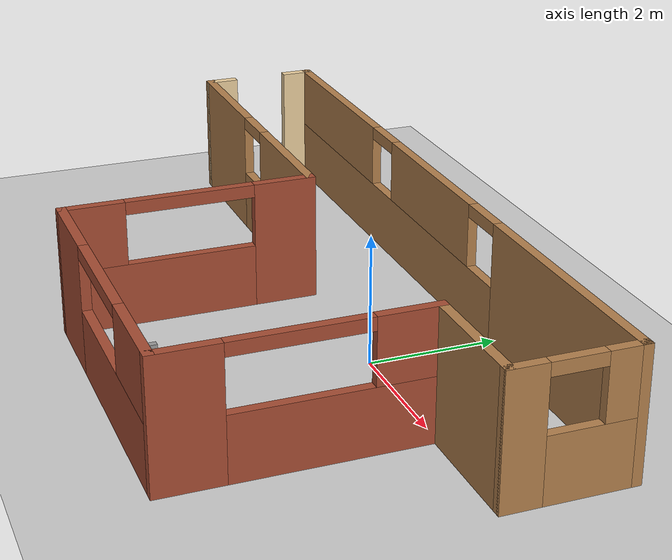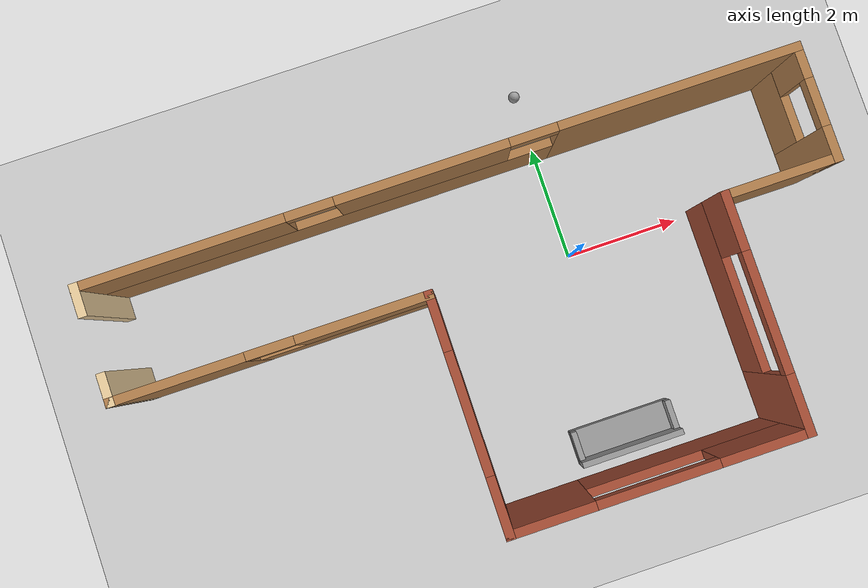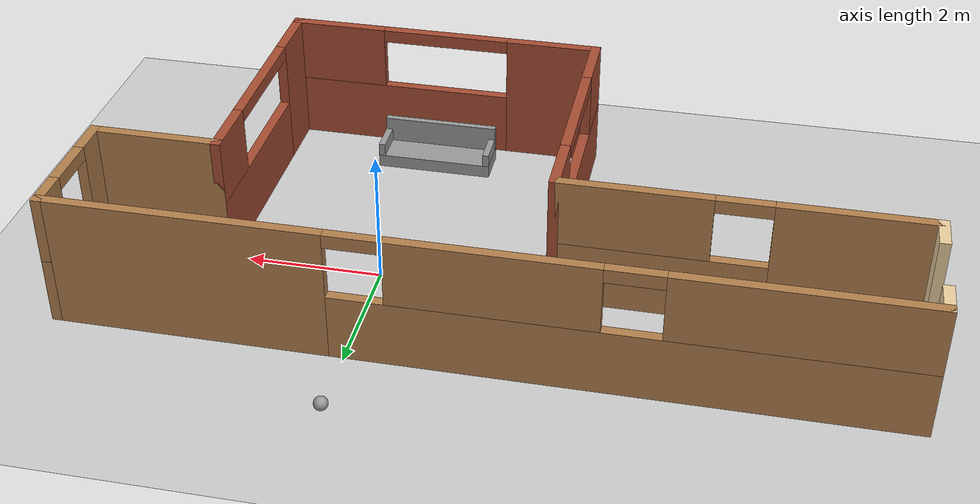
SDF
<sdf version="1.6">
 <world name="default">
  <light name="sun" type="directional">
   <pose>0 0 10 0 -0 0</pose>
   <diffuse>0.8 0.8 0.8 1</diffuse>
   <specular>0.2 0.2 0.2 1</specular>
   <attenuation>
    <range>1000</range>
    <constant>0.9</constant>
    <linear>0.01</linear>
    <quadratic>0.001</quadratic>
   </attenuation>
   <direction>-0.5 0.1 -0.9</direction>
  </light>
  <model name="ground_plane">
   <static>1</static>
   <link name="link">
    <collision name="collision">
     <geometry><plane><normal>0 0 1</normal><size>100 100</size></plane></geometry>
     <surface>
      <contact><collide_bitmask>65535</collide_bitmask></contact>
      <friction><ode><mu>100</mu><mu2>50</mu2></ode></friction>
     </surface>
    </collision>
    <visual name="visual">
     <cast_shadows>0</cast_shadows>
     <geometry><plane><normal>0 0 1</normal><size>100 100</size></plane></geometry>
     <material>
      <script><uri>file://media/materials/scripts/gazebo.material</uri><name>Gazebo/Grey</name></script>
     </material>
    </visual>
   </link>
  </model>
  <gravity>0 0 -9.8</gravity>
  <magnetic_field>6e-06 2.3e-05 -4.2e-05</magnetic_field>
  <atmosphere type="adiabatic"/>
  <physics name="default_physics" default="0" type="ode">
   <max_step_size>0.001</max_step_size>
   <real_time_factor>1</real_time_factor>
   <real_time_update_rate>1000</real_time_update_rate>
  </physics>
  <scene><ambient>0.4 0.4 0.4 1</ambient><background>0.7 0.7 0.7 1</background><shadows>1</shadows></scene>
  <spherical_coordinates>
   <surface_model>EARTH_WGS84</surface_model>
   <latitude_deg>0</latitude_deg>
   <longitude_deg>0</longitude_deg>
   <elevation>0</elevation>
   <heading_deg>0</heading_deg>
  </spherical_coordinates>
  <model name="home">
   <pose>-1.755 -0.984 0 0 -0 0</pose>
   <link name="Wall_10">
    <pose>-5.925 1.925 0 0 -0 -1.5708</pose>
    <visual name="Wall_10_Visual_0">
     <pose>-0.7245 0 1 0 -0 0</pose>
     <geometry><box><size>0.551 0.15 2</size></box></geometry>
     <material>
      <script><uri>file://media/materials/scripts/gazebo.material</uri><name>Gazebo/Grey</name></script>
      <ambient>0.921569 0.807843 0.615686 1</ambient>
     </material>
     <meta><layer>0</layer></meta>
    </visual>
    <collision name="Wall_10_Collision_0">
     <geometry><box><size>0.551 0.15 2</size></box></geometry>
     <pose>-0.7245 0 1 0 -0 0</pose>
    </collision>
    <visual name="Wall_10_Visual_1">
     <pose>0.7255 0 1 0 -0 0</pose>
     <geometry><box><size>0.549 0.15 2</size></box></geometry>
     <material>
      <script><uri>file://media/materials/scripts/gazebo.material</uri><name>Gazebo/Grey</name></script>
      <ambient>0.921569 0.807843 0.615686 1</ambient>
     </material>
     <meta><layer>0</layer></meta>
    </visual>
    <collision name="Wall_10_Collision_1">
     <geometry><box><size>0.549 0.15 2</size></box></geometry>
     <pose>0.7255 0 1 0 -0 0</pose>
    </collision>
   </link>
   <link name="Wall_11">
    <pose>-3.35 1 0 0 -0 0</pose>
    <visual name="Wall_11_Visual_0">
     <pose>-1.5275 0 1 0 -0 0</pose>
     <geometry><box><size>2.245 0.15 2</size></box></geometry>
     <material>
      <script><uri>file://media/materials/scripts/gazebo.material</uri><name>Gazebo/Wood</name></script>
      <ambient>1 1 1 1</ambient>
     </material>
     <meta><layer>0</layer></meta>
    </visual>
    <collision name="Wall_11_Collision_0">
     <geometry><box><size>2.245 0.15 2</size></box></geometry>
     <pose>-1.5275 0 1 0 -0 0</pose>
    </collision>
    <visual name="Wall_11_Visual_1">
     <pose>1.1225 0 0.5 0 -0 0</pose>
     <geometry><box><size>3.055 0.15 1</size></box></geometry>
     <material>
      <script><uri>file://media/materials/scripts/gazebo.material</uri><name>Gazebo/Wood</name></script>
      <ambient>1 1 1 1</ambient>
     </material>
     <meta><layer>0</layer></meta>
    </visual>
    <collision name="Wall_11_Collision_1">
     <geometry><box><size>3.055 0.15 1</size></box></geometry>
     <pose>1.1225 0 0.5 0 -0 0</pose>
    </collision>
    <visual name="Wall_11_Visual_2">
     <pose>1.5225 0 1.5 0 -0 0</pose>
     <geometry><box><size>2.255 0.15 1</size></box></geometry>
     <material>
      <script><uri>file://media/materials/scripts/gazebo.material</uri><name>Gazebo/Wood</name></script>
      <ambient>1 1 1 1</ambient>
     </material>
     <meta><layer>0</layer></meta>
    </visual>
    <collision name="Wall_11_Collision_2">
     <geometry><box><size>2.255 0.15 1</size></box></geometry>
     <pose>1.5225 0 1.5 0 -0 0</pose>
    </collision>
    <visual name="Wall_11_Visual_3">
     <pose>-0.005 0 1.9 0 -0 0</pose>
     <geometry><box><size>0.8 0.15 0.2</size></box></geometry>
     <material>
      <script><uri>file://media/materials/scripts/gazebo.material</uri><name>Gazebo/Wood</name></script>
      <ambient>1 1 1 1</ambient>
     </material>
     <meta><layer>0</layer></meta>
    </visual>
    <collision name="Wall_11_Collision_3">
     <geometry><box><size>0.8 0.15 0.2</size></box></geometry>
     <pose>-0.005 0 1.9 0 -0 0</pose>
    </collision>
   </link>
   <link name="Wall_4">
    <pose>-0.775 -0.925 0 0 -0 -1.5708</pose>
    <visual name="Wall_4_Visual_0">
     <pose>-1.5045 0 1 0 -0 0</pose>
     <geometry><box><size>0.991 0.15 2</size></box></geometry>
     <material>
      <script><uri>file://media/materials/scripts/gazebo.material</uri><name>Gazebo/Bricks</name></script>
      <ambient>1 1 1 1</ambient>
     </material>
     <meta><layer>0</layer></meta>
    </visual>
    <collision name="Wall_4_Collision_0">
     <geometry><box><size>0.991 0.15 2</size></box></geometry>
     <pose>-1.5045 0 1 0 -0 0</pose>
    </collision>
    <visual name="Wall_4_Visual_1">
     <pose>0.4955 0 0.5 0 -0 0</pose>
     <geometry><box><size>3.009 0.15 1</size></box></geometry>
     <material>
      <script><uri>file://media/materials/scripts/gazebo.material</uri><name>Gazebo/Bricks</name></script>
      <ambient>1 1 1 1</ambient>
     </material>
     <meta><layer>0</layer></meta>
    </visual>
    <collision name="Wall_4_Collision_1">
     <geometry><box><size>3.009 0.15 1</size></box></geometry>
     <pose>0.4955 0 0.5 0 -0 0</pose>
    </collision>
    <visual name="Wall_4_Visual_2">
     <pose>1.4955 0 1.5 0 -0 0</pose>
     <geometry><box><size>1.009 0.15 1</size></box></geometry>
     <material>
      <script><uri>file://media/materials/scripts/gazebo.material</uri><name>Gazebo/Bricks</name></script>
      <ambient>1 1 1 1</ambient>
     </material>
     <meta><layer>0</layer></meta>
    </visual>
    <collision name="Wall_4_Collision_2">
     <geometry><box><size>1.009 0.15 1</size></box></geometry>
     <pose>1.4955 0 1.5 0 -0 0</pose>
    </collision>
    <visual name="Wall_4_Visual_3">
     <pose>-0.009 0 1.9 0 -0 0</pose>
     <geometry><box><size>2 0.15 0.2</size></box></geometry>
     <material>
      <script><uri>file://media/materials/scripts/gazebo.material</uri><name>Gazebo/Bricks</name></script>
      <ambient>1 1 1 1</ambient>
     </material>
     <meta><layer>0</layer></meta>
    </visual>
    <collision name="Wall_4_Collision_3">
     <geometry><box><size>2 0.15 0.2</size></box></geometry>
     <pose>-0.009 0 1.9 0 -0 0</pose>
    </collision>
   </link>
   <link name="Wall_5">
    <pose>1.65 -2.85 0 0 -0 0</pose>
    <visual name="Wall_5_Visual_0">
     <pose>-1.7625 0 1 0 -0 0</pose>
     <geometry><box><size>1.475 0.15 2</size></box></geometry>
     <material>
      <script><uri>file://media/materials/scripts/gazebo.material</uri><name>Gazebo/Bricks</name></script>
      <ambient>1 1 1 1</ambient>
     </material>
     <meta><layer>0</layer></meta>
    </visual>
    <collision name="Wall_5_Collision_0">
     <geometry><box><size>1.475 0.15 2</size></box></geometry>
     <pose>-1.7625 0 1 0 -0 0</pose>
    </collision>
    <visual name="Wall_5_Visual_1">
     <pose>0.7375 0 0.5 0 -0 0</pose>
     <geometry><box><size>3.525 0.15 1</size></box></geometry>
     <material>
      <script><uri>file://media/materials/scripts/gazebo.material</uri><name>Gazebo/Bricks</name></script>
      <ambient>1 1 1 1</ambient>
     </material>
     <meta><layer>0</layer></meta>
    </visual>
    <collision name="Wall_5_Collision_1">
     <geometry><box><size>3.525 0.15 1</size></box></geometry>
     <pose>0.7375 0 0.5 0 -0 0</pose>
    </collision>
    <visual name="Wall_5_Visual_2">
     <pose>1.7375 0 1.5 0 -0 0</pose>
     <geometry><box><size>1.525 0.15 1</size></box></geometry>
     <material>
      <script><uri>file://media/materials/scripts/gazebo.material</uri><name>Gazebo/Bricks</name></script>
      <ambient>1 1 1 1</ambient>
     </material>
     <meta><layer>0</layer></meta>
    </visual>
    <collision name="Wall_5_Collision_2">
     <geometry><box><size>1.525 0.15 1</size></box></geometry>
     <pose>1.7375 0 1.5 0 -0 0</pose>
    </collision>
    <visual name="Wall_5_Visual_3">
     <pose>-0.025 0 1.9 0 -0 0</pose>
     <geometry><box><size>2 0.15 0.2</size></box></geometry>
     <material>
      <script><uri>file://media/materials/scripts/gazebo.material</uri><name>Gazebo/Bricks</name></script>
      <ambient>1 1 1 1</ambient>
     </material>
     <meta><layer>0</layer></meta>
    </visual>
    <collision name="Wall_5_Collision_3">
     <geometry><box><size>2 0.15 0.2</size></box></geometry>
     <pose>-0.025 0 1.9 0 -0 0</pose>
    </collision>
   </link>
   <link name="Wall_6">
    <pose>4.075 -0.925 0 0 -0 1.5708</pose>
    <visual name="Wall_6_Visual_0">
     <pose>-1.4955 0 1 0 -0 0</pose>
     <geometry><box><size>1.009 0.15 2</size></box></geometry>
     <material>
      <script><uri>file://media/materials/scripts/gazebo.material</uri><name>Gazebo/Bricks</name></script>
      <ambient>1 1 1 1</ambient>
     </material>
     <meta><layer>0</layer></meta>
    </visual>
    <collision name="Wall_6_Collision_0">
     <geometry><box><size>1.009 0.15 2</size></box></geometry>
     <pose>-1.4955 0 1 0 -0 0</pose>
    </collision>
    <visual name="Wall_6_Visual_1">
     <pose>0.5045 0 0.5 0 -0 0</pose>
     <geometry><box><size>2.991 0.15 1</size></box></geometry>
     <material>
      <script><uri>file://media/materials/scripts/gazebo.material</uri><name>Gazebo/Bricks</name></script>
      <ambient>1 1 1 1</ambient>
     </material>
     <meta><layer>0</layer></meta>
    </visual>
    <collision name="Wall_6_Collision_1">
     <geometry><box><size>2.991 0.15 1</size></box></geometry>
     <pose>0.5045 0 0.5 0 -0 0</pose>
    </collision>
    <visual name="Wall_6_Visual_2">
     <pose>1.5045 0 1.5 0 -0 0</pose>
     <geometry><box><size>0.991 0.15 1</size></box></geometry>
     <material>
      <script><uri>file://media/materials/scripts/gazebo.material</uri><name>Gazebo/Bricks</name></script>
      <ambient>1 1 1 1</ambient>
     </material>
     <meta><layer>0</layer></meta>
    </visual>
    <collision name="Wall_6_Collision_2">
     <geometry><box><size>0.991 0.15 1</size></box></geometry>
     <pose>1.5045 0 1.5 0 -0 0</pose>
    </collision>
    <visual name="Wall_6_Visual_3">
     <pose>0.009 0 1.9 0 -0 0</pose>
     <geometry><box><size>2 0.15 0.2</size></box></geometry>
     <material>
      <script><uri>file://media/materials/scripts/gazebo.material</uri><name>Gazebo/Bricks</name></script>
      <ambient>1 1 1 1</ambient>
     </material>
     <meta><layer>0</layer></meta>
    </visual>
    <collision name="Wall_6_Collision_3">
     <geometry><box><size>2 0.15 0.2</size></box></geometry>
     <pose>0.009 0 1.9 0 -0 0</pose>
    </collision>
   </link>
   <link name="Wall_7">
    <collision name="Wall_7_Collision">
     <geometry><box><size>2 0.15 2</size></box></geometry>
     <pose>0 0 1 0 -0 0</pose>
    </collision>
    <visual name="Wall_7_Visual">
     <pose>0 0 1 0 -0 0</pose>
     <geometry><box><size>2 0.15 2</size></box></geometry>
     <material>
      <script><uri>file://media/materials/scripts/gazebo.material</uri><name>Gazebo/Wood</name></script>
      <ambient>1 1 1 1</ambient>
     </material>
     <meta><layer>0</layer></meta>
    </visual>
    <pose>5 1 0 0 -0 0</pose>
   </link>
   <link name="Wall_8">
    <pose>5.925 1.925 0 0 -0 1.5708</pose>
    <visual name="Wall_8_Visual_0">
     <pose>-0.7005 0 1 0 -0 0</pose>
     <geometry><box><size>0.599 0.15 2</size></box></geometry>
     <material>
      <script><uri>file://media/materials/scripts/gazebo.material</uri><name>Gazebo/Wood</name></script>
      <ambient>1 1 1 1</ambient>
     </material>
     <meta><layer>0</layer></meta>
    </visual>
    <collision name="Wall_8_Collision_0">
     <geometry><box><size>0.599 0.15 2</size></box></geometry>
     <pose>-0.7005 0 1 0 -0 0</pose>
    </collision>
    <visual name="Wall_8_Visual_1">
     <pose>0.2995 0 0.5 0 -0 0</pose>
     <geometry><box><size>1.401 0.15 1</size></box></geometry>
     <material>
      <script><uri>file://media/materials/scripts/gazebo.material</uri><name>Gazebo/Wood</name></script>
      <ambient>1 1 1 1</ambient>
     </material>
     <meta><layer>0</layer></meta>
    </visual>
    <collision name="Wall_8_Collision_1">
     <geometry><box><size>1.401 0.15 1</size></box></geometry>
     <pose>0.2995 0 0.5 0 -0 0</pose>
    </collision>
    <visual name="Wall_8_Visual_2">
     <pose>0.6995 0 1.5 0 -0 0</pose>
     <geometry><box><size>0.601 0.15 1</size></box></geometry>
     <material>
      <script><uri>file://media/materials/scripts/gazebo.material</uri><name>Gazebo/Wood</name></script>
      <ambient>1 1 1 1</ambient>
     </material>
     <meta><layer>0</layer></meta>
    </visual>
    <collision name="Wall_8_Collision_2">
     <geometry><box><size>0.601 0.15 1</size></box></geometry>
     <pose>0.6995 0 1.5 0 -0 0</pose>
    </collision>
    <visual name="Wall_8_Visual_3">
     <pose>-0.001 0 1.9 0 -0 0</pose>
     <geometry><box><size>0.8 0.15 0.2</size></box></geometry>
     <material>
      <script><uri>file://media/materials/scripts/gazebo.material</uri><name>Gazebo/Wood</name></script>
      <ambient>1 1 1 1</ambient>
     </material>
     <meta><layer>0</layer></meta>
    </visual>
    <collision name="Wall_8_Collision_3">
     <geometry><box><size>0.8 0.15 0.2</size></box></geometry>
     <pose>-0.001 0 1.9 0 -0 0</pose>
    </collision>
   </link>
   <link name="Wall_9">
    <pose>-0 2.85 0 0 -0 3.14159</pose>
    <visual name="Wall_9_Visual_0">
     <pose>-3.9825 0 1 0 -0 0</pose>
     <geometry><box><size>4.035 0.15 2</size></box></geometry>
     <material>
      <script><uri>file://media/materials/scripts/gazebo.material</uri><name>Gazebo/Wood</name></script>
      <ambient>1 1 1 1</ambient>
     </material>
     <meta><layer>0</layer></meta>
    </visual>
    <collision name="Wall_9_Collision_0">
     <geometry><box><size>4.035 0.15 2</size></box></geometry>
     <pose>-3.9825 0 1 0 -0 0</pose>
    </collision>
    <visual name="Wall_9_Visual_1">
     <pose>2.0175 0 0.5 0 -0 0</pose>
     <geometry><box><size>7.965 0.15 1</size></box></geometry>
     <material>
      <script><uri>file://media/materials/scripts/gazebo.material</uri><name>Gazebo/Wood</name></script>
      <ambient>1 1 1 1</ambient>
     </material>
     <meta><layer>0</layer></meta>
    </visual>
    <collision name="Wall_9_Collision_1">
     <geometry><box><size>7.965 0.15 1</size></box></geometry>
     <pose>2.0175 0 0.5 0 -0 0</pose>
    </collision>
    <visual name="Wall_9_Visual_2">
     <pose>0.275 0 1.5 0 -0 0</pose>
     <geometry><box><size>2.88 0.15 1</size></box></geometry>
     <material>
      <script><uri>file://media/materials/scripts/gazebo.material</uri><name>Gazebo/Wood</name></script>
      <ambient>1 1 1 1</ambient>
     </material>
     <meta><layer>0</layer></meta>
    </visual>
    <collision name="Wall_9_Collision_2">
     <geometry><box><size>2.88 0.15 1</size></box></geometry>
     <pose>0.275 0 1.5 0 -0 0</pose>
    </collision>
    <visual name="Wall_9_Visual_3">
     <pose>4.2575 0 1.5 0 -0 0</pose>
     <geometry><box><size>3.485 0.15 1</size></box></geometry>
     <material>
      <script><uri>file://media/materials/scripts/gazebo.material</uri><name>Gazebo/Wood</name></script>
      <ambient>1 1 1 1</ambient>
     </material>
     <meta><layer>0</layer></meta>
    </visual>
    <collision name="Wall_9_Collision_3">
     <geometry><box><size>3.485 0.15 1</size></box></geometry>
     <pose>4.2575 0 1.5 0 -0 0</pose>
    </collision>
    <visual name="Wall_9_Visual_4">
     <pose>-1.565 0 1.9 0 -0 0</pose>
     <geometry><box><size>0.8 0.15 0.2</size></box></geometry>
     <material>
      <script><uri>file://media/materials/scripts/gazebo.material</uri><name>Gazebo/Wood</name></script>
      <ambient>1 1 1 1</ambient>
     </material>
     <meta><layer>0</layer></meta>
    </visual>
    <collision name="Wall_9_Collision_4">
     <geometry><box><size>0.8 0.15 0.2</size></box></geometry>
     <pose>-1.565 0 1.9 0 -0 0</pose>
    </collision>
    <visual name="Wall_9_Visual_5">
     <pose>2.115 0 1.9 0 -0 0</pose>
     <geometry><box><size>0.8 0.15 0.2</size></box></geometry>
     <material>
      <script><uri>file://media/materials/scripts/gazebo.material</uri><name>Gazebo/Wood</name></script>
      <ambient>1 1 1 1</ambient>
     </material>
     <meta><layer>0</layer></meta>
    </visual>
    <collision name="Wall_9_Collision_5">
     <geometry><box><size>0.8 0.15 0.2</size></box></geometry>
     <pose>2.115 0 1.9 0 -0 0</pose>
    </collision>
   </link>
   <static>1</static>
  </model>
  <model name="sofa">
   <link name="link_0">
    <inertial>
     <mass>1</mass>
     <inertia>
      <ixx>0.166667</ixx>
      <ixy>0</ixy>
      <ixz>0</ixz>
      <iyy>0.166667</iyy>
      <iyz>0</iyz>
      <izz>0.166667</izz>
     </inertia>
    </inertial>
    <pose>0 0.0375 -0.175 0 -0 0</pose>
    <visual name="visual">
     <geometry><box><size>1.8 0.6 0.2</size></box></geometry>
     <material>
      <lighting>1</lighting>
      <script><uri>file://media/materials/scripts/gazebo.material</uri><name>Gazebo/Grey</name></script>
      <shader type="pixel"><normal_map>__default__</normal_map></shader>
      <ambient>0.3 0.3 0.3 1</ambient>
      <diffuse>0.7 0.7 0.7 1</diffuse>
      <specular>0.01 0.01 0.01 1</specular>
      <emissive>0 0 0 1</emissive>
     </material>
    </visual>
    <collision name="collision">
     <geometry><box><size>1.8 0.6 0.2</size></box></geometry>
     <surface>
      <friction>
       <ode><mu>1</mu><mu2>1</mu2><fdir1>0 0 0</fdir1><slip1>0</slip1><slip2>0</slip2></ode>
       <torsional>
        <coefficient>1</coefficient>
        <patch_radius>0</patch_radius>
        <surface_radius>0</surface_radius>
        <use_patch_radius>1</use_patch_radius>
        <ode><slip>0</slip></ode>
       </torsional>
      </friction>
      <bounce><restitution_coefficient>0</restitution_coefficient><threshold>1e+06</threshold></bounce>
      <contact>
       <collide_without_contact>0</collide_without_contact>
       <collide_without_contact_bitmask>1</collide_without_contact_bitmask>
       <collide_bitmask>1</collide_bitmask>
       <ode>
        <soft_cfm>0</soft_cfm>
        <soft_erp>0.2</soft_erp>
        <kp>1e+13</kp>
        <kd>1</kd>
        <max_vel>0.01</max_vel>
        <min_depth>0</min_depth>
       </ode>
       <bullet>
        <split_impulse>1</split_impulse>
        <split_impulse_penetration_threshold>-0.01</split_impulse_penetration_threshold>
        <soft_cfm>0</soft_cfm>
        <soft_erp>0.2</soft_erp>
        <kp>1e+13</kp>
        <kd>1</kd>
       </bullet>
      </contact>
     </surface>
    </collision>
   </link>
   <link name="link_4">
    <inertial>
     <mass>1</mass>
     <inertia>
      <ixx>0.166667</ixx>
      <ixy>0</ixy>
      <ixz>0</ixz>
      <iyy>0.166667</iyy>
      <iyz>0</iyz>
      <izz>0.166667</izz>
     </inertia>
    </inertial>
    <pose>0 -0.2125 0.125 0 -0 0</pose>
    <visual name="visual">
     <geometry><box><size>1.8 0.1 0.4</size></box></geometry>
     <material>
      <lighting>1</lighting>
      <script><uri>file://media/materials/scripts/gazebo.material</uri><name>Gazebo/Grey</name></script>
      <shader type="pixel"><normal_map>__default__</normal_map></shader>
      <ambient>0.3 0.3 0.3 1</ambient>
      <diffuse>0.7 0.7 0.7 1</diffuse>
      <specular>0.01 0.01 0.01 1</specular>
      <emissive>0 0 0 1</emissive>
     </material>
    </visual>
    <collision name="collision">
     <geometry><box><size>1.8 0.1 0.4</size></box></geometry>
     <surface>
      <friction>
       <ode><mu>1</mu><mu2>1</mu2><fdir1>0 0 0</fdir1><slip1>0</slip1><slip2>0</slip2></ode>
       <torsional>
        <coefficient>1</coefficient>
        <patch_radius>0</patch_radius>
        <surface_radius>0</surface_radius>
        <use_patch_radius>1</use_patch_radius>
        <ode><slip>0</slip></ode>
       </torsional>
      </friction>
      <bounce><restitution_coefficient>0</restitution_coefficient><threshold>1e+06</threshold></bounce>
      <contact>
       <collide_without_contact>0</collide_without_contact>
       <collide_without_contact_bitmask>1</collide_without_contact_bitmask>
       <collide_bitmask>1</collide_bitmask>
       <ode>
        <soft_cfm>0</soft_cfm>
        <soft_erp>0.2</soft_erp>
        <kp>1e+13</kp>
        <kd>1</kd>
        <max_vel>0.01</max_vel>
        <min_depth>0</min_depth>
       </ode>
       <bullet>
        <split_impulse>1</split_impulse>
        <split_impulse_penetration_threshold>-0.01</split_impulse_penetration_threshold>
        <soft_cfm>0</soft_cfm>
        <soft_erp>0.2</soft_erp>
        <kp>1e+13</kp>
        <kd>1</kd>
       </bullet>
      </contact>
     </surface>
    </collision>
   </link>
   <link name="link_5">
    <inertial>
     <mass>1</mass>
     <inertia>
      <ixx>0.166667</ixx>
      <ixy>0</ixy>
      <ixz>0</ixz>
      <iyy>0.166667</iyy>
      <iyz>0</iyz>
      <izz>0.166667</izz>
     </inertia>
    </inertial>
    <pose>-0.85 0.0875 0.025 0 -0 0</pose>
    <visual name="visual">
     <geometry><box><size>0.1 0.5 0.2</size></box></geometry>
     <material>
      <lighting>1</lighting>
      <script><uri>file://media/materials/scripts/gazebo.material</uri><name>Gazebo/Grey</name></script>
      <shader type="pixel"><normal_map>__default__</normal_map></shader>
      <ambient>0.3 0.3 0.3 1</ambient>
      <diffuse>0.7 0.7 0.7 1</diffuse>
      <specular>0.01 0.01 0.01 1</specular>
      <emissive>0 0 0 1</emissive>
     </material>
    </visual>
    <collision name="collision">
     <geometry><box><size>0.1 0.5 0.2</size></box></geometry>
     <surface>
      <friction>
       <ode><mu>1</mu><mu2>1</mu2><fdir1>0 0 0</fdir1><slip1>0</slip1><slip2>0</slip2></ode>
       <torsional>
        <coefficient>1</coefficient>
        <patch_radius>0</patch_radius>
        <surface_radius>0</surface_radius>
        <use_patch_radius>1</use_patch_radius>
        <ode><slip>0</slip></ode>
       </torsional>
      </friction>
      <bounce><restitution_coefficient>0</restitution_coefficient><threshold>1e+06</threshold></bounce>
      <contact>
       <collide_without_contact>0</collide_without_contact>
       <collide_without_contact_bitmask>1</collide_without_contact_bitmask>
       <collide_bitmask>1</collide_bitmask>
       <ode>
        <soft_cfm>0</soft_cfm>
        <soft_erp>0.2</soft_erp>
        <kp>1e+13</kp>
        <kd>1</kd>
        <max_vel>0.01</max_vel>
        <min_depth>0</min_depth>
       </ode>
       <bullet>
        <split_impulse>1</split_impulse>
        <split_impulse_penetration_threshold>-0.01</split_impulse_penetration_threshold>
        <soft_cfm>0</soft_cfm>
        <soft_erp>0.2</soft_erp>
        <kp>1e+13</kp>
        <kd>1</kd>
       </bullet>
      </contact>
     </surface>
    </collision>
   </link>
   <link name="link_5_clone">
    <inertial>
     <mass>1</mass>
     <inertia>
      <ixx>0.166667</ixx>
      <ixy>0</ixy>
      <ixz>0</ixz>
      <iyy>0.166667</iyy>
      <iyz>0</iyz>
      <izz>0.166667</izz>
     </inertia>
    </inertial>
    <pose>0.85 0.0875 0.025 0 -0 0</pose>
    <visual name="visual">
     <geometry><box><size>0.1 0.5 0.2</size></box></geometry>
     <material>
      <lighting>1</lighting>
      <script><uri>file://media/materials/scripts/gazebo.material</uri><name>Gazebo/Grey</name></script>
      <shader type="pixel"><normal_map>__default__</normal_map></shader>
      <ambient>0.3 0.3 0.3 1</ambient>
      <diffuse>0.7 0.7 0.7 1</diffuse>
      <specular>0.01 0.01 0.01 1</specular>
      <emissive>0 0 0 1</emissive>
     </material>
    </visual>
    <collision name="collision">
     <geometry><box><size>0.1 0.5 0.2</size></box></geometry>
     <surface>
      <friction>
       <ode><mu>1</mu><mu2>1</mu2><fdir1>0 0 0</fdir1><slip1>0</slip1><slip2>0</slip2></ode>
       <torsional>
        <coefficient>1</coefficient>
        <patch_radius>0</patch_radius>
        <surface_radius>0</surface_radius>
        <use_patch_radius>1</use_patch_radius>
        <ode><slip>0</slip></ode>
       </torsional>
      </friction>
      <bounce><restitution_coefficient>0</restitution_coefficient><threshold>1e+06</threshold></bounce>
      <contact>
       <collide_without_contact>0</collide_without_contact>
       <collide_without_contact_bitmask>1</collide_without_contact_bitmask>
       <collide_bitmask>1</collide_bitmask>
       <ode>
        <soft_cfm>0</soft_cfm>
        <soft_erp>0.2</soft_erp>
        <kp>1e+13</kp>
        <kd>1</kd>
        <max_vel>0.01</max_vel>
        <min_depth>0</min_depth>
       </ode>
       <bullet>
        <split_impulse>1</split_impulse>
        <split_impulse_penetration_threshold>-0.01</split_impulse_penetration_threshold>
        <soft_cfm>0</soft_cfm>
        <soft_erp>0.2</soft_erp>
        <kp>1e+13</kp>
        <kd>1</kd>
       </bullet>
      </contact>
     </surface>
    </collision>
   </link>
   <joint name="link_0_JOINT_0" type="fixed">
    <parent>link_0</parent>
    <child>link_4</child>
    <physics>
     <ode><limit><cfm>0</cfm><erp>0.2</erp></limit><suspension><cfm>0</cfm><erp>0.2</erp></suspension></ode>
    </physics>
   </joint>
   <joint name="link_0_JOINT_1" type="fixed">
    <parent>link_0</parent>
    <child>link_5_clone</child>
    <physics>
     <ode><limit><cfm>0</cfm><erp>0.2</erp></limit><suspension><cfm>0</cfm><erp>0.2</erp></suspension></ode>
    </physics>
   </joint>
   <joint name="link_0_JOINT_2" type="fixed">
    <parent>link_0</parent>
    <child>link_5</child>
    <physics>
     <ode><limit><cfm>0</cfm><erp>0.2</erp></limit><suspension><cfm>0</cfm><erp>0.2</erp></suspension></ode>
    </physics>
   </joint>
   <static>0</static>
   <pose>-0.111867 -3.23929 0.275 0 0 -1.8e-05</pose>
  </model>
  <model name="my_ball">
   <link name="link_0">
    <inertial>
     <mass>1</mass>
     <inertia><ixx>0.1</ixx><ixy>0</ixy><ixz>0</ixz><iyy>0.1</iyy><iyz>0</iyz><izz>0.1</izz></inertia>
    </inertial>
    <visual name="visual">
     <geometry><sphere><radius>0.1</radius></sphere></geometry>
     <material>
      <lighting>1</lighting>
      <script><uri>file://media/materials/scripts/gazebo.material</uri><name>Gazebo/Grey</name></script>
      <shader type="pixel"><normal_map>__default__</normal_map></shader>
      <ambient>1 1 1 1</ambient>
      <diffuse>1 1 1 1</diffuse>
      <specular>1 1 1 1</specular>
      <emissive>1 1 1 1</emissive>
     </material>
    </visual>
    <collision name="collision">
     <geometry><sphere><radius>0.1</radius></sphere></geometry>
     <surface>
      <friction>
       <ode><mu>1</mu><mu2>1</mu2><fdir1>0 0 0</fdir1><slip1>0</slip1><slip2>0</slip2></ode>
       <torsional>
        <coefficient>1</coefficient>
        <patch_radius>0</patch_radius>
        <surface_radius>0</surface_radius>
        <use_patch_radius>1</use_patch_radius>
        <ode><slip>0</slip></ode>
       </torsional>
      </friction>
      <bounce><restitution_coefficient>0</restitution_coefficient><threshold>1e+06</threshold></bounce>
      <contact>
       <collide_without_contact>0</collide_without_contact>
       <collide_without_contact_bitmask>1</collide_without_contact_bitmask>
       <collide_bitmask>1</collide_bitmask>
       <ode>
        <soft_cfm>0</soft_cfm>
        <soft_erp>0.2</soft_erp>
        <kp>1e+13</kp>
        <kd>1</kd>
        <max_vel>0.01</max_vel>
        <min_depth>0</min_depth>
       </ode>
       <bullet>
        <split_impulse>1</split_impulse>
        <split_impulse_penetration_threshold>-0.01</split_impulse_penetration_threshold>
        <soft_cfm>0</soft_cfm>
        <soft_erp>0.2</soft_erp>
        <kp>1e+13</kp>
        <kd>1</kd>
       </bullet>
      </contact>
     </surface>
    </collision>
   </link>
   <static>0</static>
   <pose>0 3 0.1 0 -0 0</pose>
  </model>
 </world>
</sdf>
